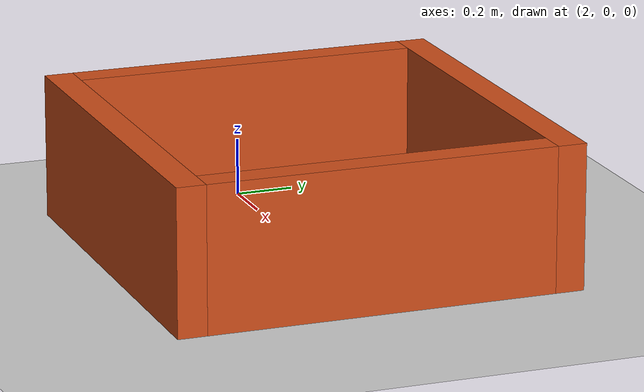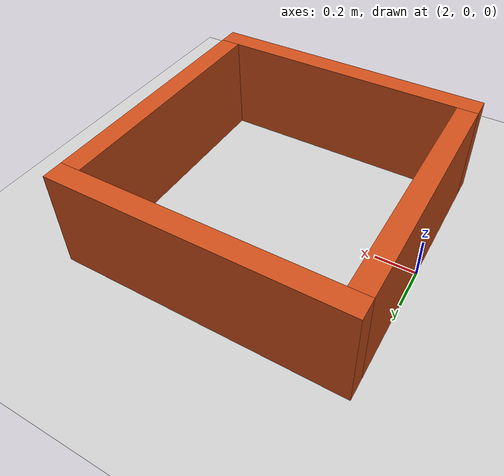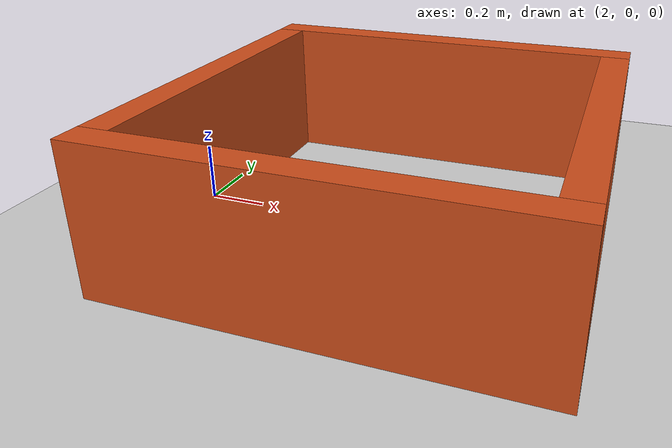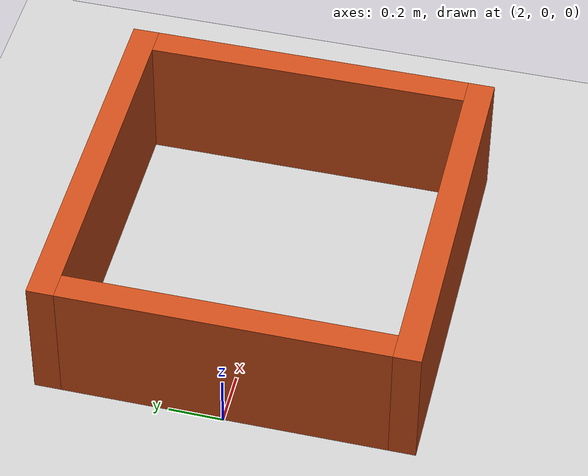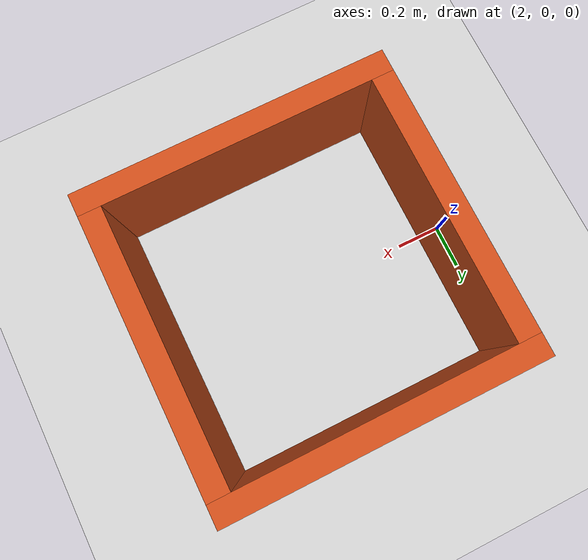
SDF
<?xml version="1.0"?>
<!-- Objetivo (2.7, 0) dentro de un recinto cerrado de 1.2 x 1.2 m: Bug2 debe declararlo inalcanzable -->
<sdf version="1.6">
  <world name="default">
  <plugin
    filename="gz-sim-physics-system"
    name="gz::sim::systems::Physics">
  </plugin>
  <plugin
    filename="gz-sim-user-commands-system"
    name="gz::sim::systems::UserCommands">
  </plugin>
  <plugin
    filename="gz-sim-scene-broadcaster-system"
    name="gz::sim::systems::SceneBroadcaster">
  </plugin>
  <plugin
    filename="gz-sim-sensors-system"
    name="gz::sim::systems::Sensors">
    <render_engine>ogre2</render_engine>
  </plugin>
  <plugin
    filename="gz-sim-imu-system"
    name="gz::sim::systems::Imu">
  </plugin>
    <include>
      <uri>https://fuel.gazebosim.org/1.0/OpenRobotics/models/Ground Plane</uri>
    </include>

    <include>
      <uri>https://fuel.gazebosim.org/1.0/OpenRobotics/models/Sun</uri>
    </include>

    <model name="wall_north">
      <static>true</static>
      <pose>2.7 0.65 0.25 0 0 0</pose>
      <link name="link">
        <collision name="collision">
          <geometry><box><size>1.4 0.1 0.5</size></box></geometry>
        </collision>
        <visual name="visual">
          <geometry><box><size>1.4 0.1 0.5</size></box></geometry>
          <material>
            <ambient>0.8 0.3 0.1 1</ambient>
            <diffuse>0.8 0.3 0.1 1</diffuse>
          </material>
        </visual>
      </link>
    </model>

    <model name="wall_south">
      <static>true</static>
      <pose>2.7 -0.65 0.25 0 0 0</pose>
      <link name="link">
        <collision name="collision">
          <geometry><box><size>1.4 0.1 0.5</size></box></geometry>
        </collision>
        <visual name="visual">
          <geometry><box><size>1.4 0.1 0.5</size></box></geometry>
          <material>
            <ambient>0.8 0.3 0.1 1</ambient>
            <diffuse>0.8 0.3 0.1 1</diffuse>
          </material>
        </visual>
      </link>
    </model>

    <model name="wall_west">
      <static>true</static>
      <pose>2.05 0 0.25 0 0 0</pose>
      <link name="link">
        <collision name="collision">
          <geometry><box><size>0.1 1.2 0.5</size></box></geometry>
        </collision>
        <visual name="visual">
          <geometry><box><size>0.1 1.2 0.5</size></box></geometry>
          <material>
            <ambient>0.8 0.3 0.1 1</ambient>
            <diffuse>0.8 0.3 0.1 1</diffuse>
          </material>
        </visual>
      </link>
    </model>

    <model name="wall_east">
      <static>true</static>
      <pose>3.35 0 0.25 0 0 0</pose>
      <link name="link">
        <collision name="collision">
          <geometry><box><size>0.1 1.2 0.5</size></box></geometry>
        </collision>
        <visual name="visual">
          <geometry><box><size>0.1 1.2 0.5</size></box></geometry>
          <material>
            <ambient>0.8 0.3 0.1 1</ambient>
            <diffuse>0.8 0.3 0.1 1</diffuse>
          </material>
        </visual>
      </link>
    </model>

    <scene>
      <shadows>false</shadows>
    </scene>

    <gui fullscreen='0'>
      <camera name='user_camera'>
        <pose frame=''>0.319654 -0.235002 9.29441 0 1.5138 0.009599</pose>
        <view_controller>orbit</view_controller>
        <projection_type>perspective</projection_type>
      </camera>
    </gui>

    <physics type="ode">
      <real_time_update_rate>1000.0</real_time_update_rate>
      <max_step_size>0.001</max_step_size>
      <real_time_factor>1</real_time_factor>
      <ode>
        <solver>
          <type>quick</type>
          <iters>150</iters>
          <precon_iters>0</precon_iters>
          <sor>1.400000</sor>
          <use_dynamic_moi_rescaling>1</use_dynamic_moi_rescaling>
        </solver>
        <constraints>
          <cfm>0.00001</cfm>
          <erp>0.2</erp>
          <contact_max_correcting_vel>2000.000000</contact_max_correcting_vel>
          <contact_surface_layer>0.01000</contact_surface_layer>
        </constraints>
      </ode>
    </physics>

  </world>
</sdf>
